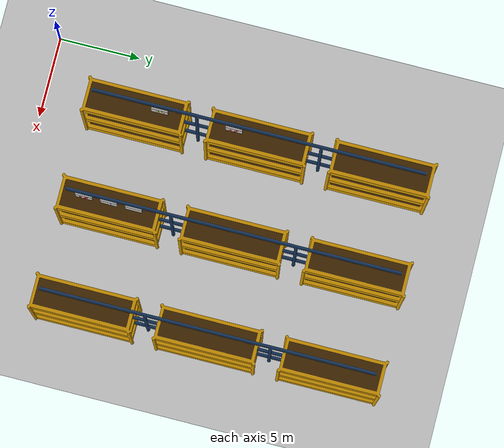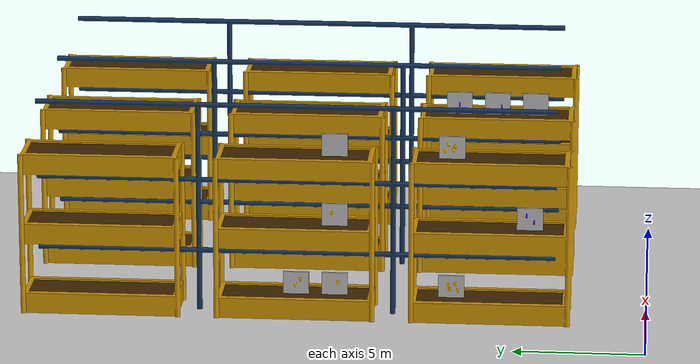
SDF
<sdf version="1.7">
 <world name="default">
  <model name="ground_plane">
   <static>1</static>
   <link name="link">
    <collision name="collision">
     <geometry><plane><normal>0 0 1</normal><size>100 100</size></plane></geometry>
     <surface>
      <contact><collide_bitmask>65535</collide_bitmask></contact>
      <friction><ode><mu>100</mu><mu2>50</mu2></ode></friction>
     </surface>
    </collision>
    <visual name="visual">
     <cast_shadows>0</cast_shadows>
     <geometry><plane><normal>0 0 1</normal><size>100 100</size></plane></geometry>
     <material>
      <script><uri>file://media/materials/scripts/gazebo.material</uri><name>Gazebo/Grey</name></script>
     </material>
    </visual>
   </link>
  </model>
  <model name="greenhouse_world">
   <link name="icuas24">
    <inertial>
     <mass>1</mass>
     <inertia><ixx>10</ixx><ixy>0</ixy><ixz>0</ixz><iyy>10</iyy><iyz>0</iyz><izz>10</izz></inertia>
    </inertial>
    <collision name="icuas24_collision">
     <geometry>
      <mesh>
       <scale>1 1 1</scale>
       <uri>/root/sim_ws/src/icuas24_competition/models/icuas24/icuas24_wrld_notxt.dae</uri>
      </mesh>
     </geometry>
    </collision>
    <sensor name="beds_collision" type="contact">
     <always_on>1</always_on>
     <visualize>0</visualize>
     <topic>__default_topic__</topic>
     <update_rate>50.0</update_rate>
     <plugin name="beds_collision_controller" filename="libgazebo_ros_bumper.so">
      <alwaysOn>1</alwaysOn>
      <updateRate>5.0</updateRate>
      <bumperTopicName>/bumper/beds</bumperTopicName>
      <frameName>world</frameName>
     </plugin>
     <contact>
      <collision>__default__</collision>
      <topic>__default_topic__</topic>
      <collision>icuas24_collision</collision>
     </contact>
    </sensor>
    <visual name="icuas24_visual">
     <geometry>
      <mesh>
       <scale>1 1 1</scale>
       <uri>/root/sim_ws/src/icuas24_competition/models/icuas24/icuas24_wrld_notxt.dae</uri>
      </mesh>
     </geometry>
    </visual>
   </link>
   <static>1</static>
   <pose>0 0 -0.01 0 -0 0</pose>
  </model>
  <model name="plant_1">
   <link name="pepper_2">
    <inertial>
     <mass>1</mass>
     <inertia><ixx>10</ixx><ixy>0</ixy><ixz>0</ixz><iyy>10</iyy><iyz>0</iyz><izz>10</izz></inertia>
    </inertial>
    <collision name="pepper_2_collision">
     <geometry>
      <mesh><scale>1 1 1</scale><uri>/root/sim_ws/src/icuas24_competition/models/pepper_2/pepper_2.dae</uri></mesh>
     </geometry>
    </collision>
    <visual name="pepper_2_visual">
     <geometry>
      <mesh><scale>1 1 1</scale><uri>/root/sim_ws/src/icuas24_competition/models/pepper_2/pepper_2.dae</uri></mesh>
     </geometry>
    </visual>
   </link>
   <static>1</static>
   <pose>4 7.5 1.1 0 -0 1.5707</pose>
  </model>
  <model name="plant_2">
   <link name="eggplant_4">
    <inertial>
     <mass>1</mass>
     <inertia><ixx>10</ixx><ixy>0</ixy><ixz>0</ixz><iyy>10</iyy><iyz>0</iyz><izz>10</izz></inertia>
    </inertial>
    <collision name="eggplant_4_collision">
     <geometry>
      <mesh>
       <scale>1 1 1</scale>
       <uri>/root/sim_ws/src/icuas24_competition/models/eggplant_4/eggplant_4.dae</uri>
      </mesh>
     </geometry>
    </collision>
    <visual name="eggplant_4_visual">
     <geometry>
      <mesh>
       <scale>1 1 1</scale>
       <uri>/root/sim_ws/src/icuas24_competition/models/eggplant_4/eggplant_4.dae</uri>
      </mesh>
     </geometry>
    </visual>
   </link>
   <static>1</static>
   <pose>4 4.5 3.9 0 0 -1.5707</pose>
  </model>
  <model name="plant_3">
   <link name="pepper_2">
    <inertial>
     <mass>1</mass>
     <inertia><ixx>10</ixx><ixy>0</ixy><ixz>0</ixz><iyy>10</iyy><iyz>0</iyz><izz>10</izz></inertia>
    </inertial>
    <collision name="pepper_2_collision">
     <geometry>
      <mesh><scale>1 1 1</scale><uri>/root/sim_ws/src/icuas24_competition/models/pepper_2/pepper_2.dae</uri></mesh>
     </geometry>
    </collision>
    <visual name="pepper_2_visual">
     <geometry>
      <mesh><scale>1 1 1</scale><uri>/root/sim_ws/src/icuas24_competition/models/pepper_2/pepper_2.dae</uri></mesh>
     </geometry>
    </visual>
   </link>
   <static>1</static>
   <pose>4 7.5 6.7 0 0 -1.5707</pose>
  </model>
  <model name="plant_4">
   <link name="pepper_1">
    <inertial>
     <mass>1</mass>
     <inertia><ixx>10</ixx><ixy>0</ixy><ixz>0</ixz><iyy>10</iyy><iyz>0</iyz><izz>10</izz></inertia>
    </inertial>
    <collision name="pepper_1_collision">
     <geometry>
      <mesh><scale>1 1 1</scale><uri>/root/sim_ws/src/icuas24_competition/models/pepper_1/pepper_1.dae</uri></mesh>
     </geometry>
    </collision>
    <visual name="pepper_1_visual">
     <geometry>
      <mesh><scale>1 1 1</scale><uri>/root/sim_ws/src/icuas24_competition/models/pepper_1/pepper_1.dae</uri></mesh>
     </geometry>
    </visual>
   </link>
   <static>1</static>
   <pose>4 12 1.1 0 0 -1.5707</pose>
  </model>
  <model name="plant_5">
   <link name="pepper_4">
    <inertial>
     <mass>1</mass>
     <inertia><ixx>10</ixx><ixy>0</ixy><ixz>0</ixz><iyy>10</iyy><iyz>0</iyz><izz>10</izz></inertia>
    </inertial>
    <collision name="pepper_4_collision">
     <geometry>
      <mesh><scale>1 1 1</scale><uri>/root/sim_ws/src/icuas24_competition/models/pepper_4/pepper_4.dae</uri></mesh>
     </geometry>
    </collision>
    <visual name="pepper_4_visual">
     <geometry>
      <mesh><scale>1 1 1</scale><uri>/root/sim_ws/src/icuas24_competition/models/pepper_4/pepper_4.dae</uri></mesh>
     </geometry>
    </visual>
   </link>
   <static>1</static>
   <pose>4 13.5 1.1 0 -0 1.5707</pose>
  </model>
  <model name="plant_7">
   <link name="pepper_1">
    <inertial>
     <mass>1</mass>
     <inertia><ixx>10</ixx><ixy>0</ixy><ixz>0</ixz><iyy>10</iyy><iyz>0</iyz><izz>10</izz></inertia>
    </inertial>
    <collision name="pepper_1_collision">
     <geometry>
      <mesh><scale>1 1 1</scale><uri>/root/sim_ws/src/icuas24_competition/models/pepper_1/pepper_1.dae</uri></mesh>
     </geometry>
    </collision>
    <visual name="pepper_1_visual">
     <geometry>
      <mesh><scale>1 1 1</scale><uri>/root/sim_ws/src/icuas24_competition/models/pepper_1/pepper_1.dae</uri></mesh>
     </geometry>
    </visual>
   </link>
   <static>1</static>
   <pose>4 12 3.9 0 -0 1.5707</pose>
  </model>
  <model name="plant_8">
   <link name="tomato_3">
    <inertial>
     <mass>1</mass>
     <inertia><ixx>10</ixx><ixy>0</ixy><ixz>0</ixz><iyy>10</iyy><iyz>0</iyz><izz>10</izz></inertia>
    </inertial>
    <collision name="tomato_3_collision">
     <geometry>
      <mesh><scale>1 1 1</scale><uri>/root/sim_ws/src/icuas24_competition/models/tomato_3/tomato_3.dae</uri></mesh>
     </geometry>
    </collision>
    <visual name="tomato_3_visual">
     <geometry>
      <mesh><scale>1 1 1</scale><uri>/root/sim_ws/src/icuas24_competition/models/tomato_3/tomato_3.dae</uri></mesh>
     </geometry>
    </visual>
   </link>
   <static>1</static>
   <pose>4 12 6.7 0 0 -1.5707</pose>
  </model>
  <model name="plant_19">
   <link name="tomato_2">
    <inertial>
     <mass>1</mass>
     <inertia><ixx>10</ixx><ixy>0</ixy><ixz>0</ixz><iyy>10</iyy><iyz>0</iyz><izz>10</izz></inertia>
    </inertial>
    <collision name="tomato_2_collision">
     <geometry>
      <mesh><scale>1 1 1</scale><uri>/root/sim_ws/src/icuas24_competition/models/tomato_2/tomato_2.dae</uri></mesh>
     </geometry>
    </collision>
    <visual name="tomato_2_visual">
     <geometry>
      <mesh><scale>1 1 1</scale><uri>/root/sim_ws/src/icuas24_competition/models/tomato_2/tomato_2.dae</uri></mesh>
     </geometry>
    </visual>
   </link>
   <static>1</static>
   <pose>10 4.5 1.1 0 -0 1.5707</pose>
  </model>
  <model name="plant_20">
   <link name="eggplant_1">
    <inertial>
     <mass>1</mass>
     <inertia><ixx>10</ixx><ixy>0</ixy><ixz>0</ixz><iyy>10</iyy><iyz>0</iyz><izz>10</izz></inertia>
    </inertial>
    <collision name="eggplant_1_collision">
     <geometry>
      <mesh>
       <scale>1 1 1</scale>
       <uri>/root/sim_ws/src/icuas24_competition/models/eggplant_1/eggplant_1.dae</uri>
      </mesh>
     </geometry>
    </collision>
    <visual name="eggplant_1_visual">
     <geometry>
      <mesh>
       <scale>1 1 1</scale>
       <uri>/root/sim_ws/src/icuas24_competition/models/eggplant_1/eggplant_1.dae</uri>
      </mesh>
     </geometry>
    </visual>
   </link>
   <static>1</static>
   <pose>10 6 1.1 0 0 -1.5707</pose>
  </model>
  <model name="plant_21">
   <link name="plant">
    <inertial>
     <mass>1</mass>
     <inertia><ixx>10</ixx><ixy>0</ixy><ixz>0</ixz><iyy>10</iyy><iyz>0</iyz><izz>10</izz></inertia>
    </inertial>
    <collision name="plant_collision">
     <geometry>
      <mesh><scale>1 1 1</scale><uri>/root/sim_ws/src/icuas24_competition/models/plant/plant_base.dae</uri></mesh>
     </geometry>
    </collision>
    <visual name="plant_visual">
     <geometry>
      <mesh><scale>1 1 1</scale><uri>/root/sim_ws/src/icuas24_competition/models/plant/plant_base.dae</uri></mesh>
     </geometry>
    </visual>
   </link>
   <static>1</static>
   <pose>10 7.5 1.1 0 -0 1.5707</pose>
  </model>
  <model name="plant_22">
   <link name="tomato_1">
    <inertial>
     <mass>1</mass>
     <inertia><ixx>10</ixx><ixy>0</ixy><ixz>0</ixz><iyy>10</iyy><iyz>0</iyz><izz>10</izz></inertia>
    </inertial>
    <collision name="tomato_1_collision">
     <geometry>
      <mesh><scale>1 1 1</scale><uri>/root/sim_ws/src/icuas24_competition/models/tomato_1/tomato_1.dae</uri></mesh>
     </geometry>
    </collision>
    <visual name="tomato_1_visual">
     <geometry>
      <mesh><scale>1 1 1</scale><uri>/root/sim_ws/src/icuas24_competition/models/tomato_1/tomato_1.dae</uri></mesh>
     </geometry>
    </visual>
   </link>
   <static>1</static>
   <pose>10 4.5 3.9 0 -0 1.5707</pose>
  </model>
  <model name="plant_23">
   <link name="eggplant_1">
    <inertial>
     <mass>1</mass>
     <inertia><ixx>10</ixx><ixy>0</ixy><ixz>0</ixz><iyy>10</iyy><iyz>0</iyz><izz>10</izz></inertia>
    </inertial>
    <collision name="eggplant_1_collision">
     <geometry>
      <mesh>
       <scale>1 1 1</scale>
       <uri>/root/sim_ws/src/icuas24_competition/models/eggplant_1/eggplant_1.dae</uri>
      </mesh>
     </geometry>
    </collision>
    <visual name="eggplant_1_visual">
     <geometry>
      <mesh>
       <scale>1 1 1</scale>
       <uri>/root/sim_ws/src/icuas24_competition/models/eggplant_1/eggplant_1.dae</uri>
      </mesh>
     </geometry>
    </visual>
   </link>
   <static>1</static>
   <pose>10 6 3.9 0 -0 1.5707</pose>
  </model>
  <model name="plant_24">
   <link name="tomato_3">
    <inertial>
     <mass>1</mass>
     <inertia><ixx>10</ixx><ixy>0</ixy><ixz>0</ixz><iyy>10</iyy><iyz>0</iyz><izz>10</izz></inertia>
    </inertial>
    <collision name="tomato_3_collision">
     <geometry>
      <mesh><scale>1 1 1</scale><uri>/root/sim_ws/src/icuas24_competition/models/tomato_3/tomato_3.dae</uri></mesh>
     </geometry>
    </collision>
    <visual name="tomato_3_visual">
     <geometry>
      <mesh><scale>1 1 1</scale><uri>/root/sim_ws/src/icuas24_competition/models/tomato_3/tomato_3.dae</uri></mesh>
     </geometry>
    </visual>
   </link>
   <static>1</static>
   <pose>10 7.5 3.9 0 -0 1.5707</pose>
  </model>
  <model name="plant_25">
   <link name="tomato_3">
    <inertial>
     <mass>1</mass>
     <inertia><ixx>10</ixx><ixy>0</ixy><ixz>0</ixz><iyy>10</iyy><iyz>0</iyz><izz>10</izz></inertia>
    </inertial>
    <collision name="tomato_3_collision">
     <geometry>
      <mesh><scale>1 1 1</scale><uri>/root/sim_ws/src/icuas24_competition/models/tomato_3/tomato_3.dae</uri></mesh>
     </geometry>
    </collision>
    <visual name="tomato_3_visual">
     <geometry>
      <mesh><scale>1 1 1</scale><uri>/root/sim_ws/src/icuas24_competition/models/tomato_3/tomato_3.dae</uri></mesh>
     </geometry>
    </visual>
   </link>
   <static>1</static>
   <pose>10 4.5 6.7 0 0 -1.5707</pose>
  </model>
  <model name="plant_26">
   <link name="eggplant_3">
    <inertial>
     <mass>1</mass>
     <inertia><ixx>10</ixx><ixy>0</ixy><ixz>0</ixz><iyy>10</iyy><iyz>0</iyz><izz>10</izz></inertia>
    </inertial>
    <collision name="eggplant_3_collision">
     <geometry>
      <mesh>
       <scale>1 1 1</scale>
       <uri>/root/sim_ws/src/icuas24_competition/models/eggplant_3/eggplant_3.dae</uri>
      </mesh>
     </geometry>
    </collision>
    <visual name="eggplant_3_visual">
     <geometry>
      <mesh>
       <scale>1 1 1</scale>
       <uri>/root/sim_ws/src/icuas24_competition/models/eggplant_3/eggplant_3.dae</uri>
      </mesh>
     </geometry>
    </visual>
   </link>
   <static>1</static>
   <pose>10 6 6.7 0 0 -1.5707</pose>
  </model>
  <model name="plant_27">
   <link name="eggplant_1">
    <inertial>
     <mass>1</mass>
     <inertia><ixx>10</ixx><ixy>0</ixy><ixz>0</ixz><iyy>10</iyy><iyz>0</iyz><izz>10</izz></inertia>
    </inertial>
    <collision name="eggplant_1_collision">
     <geometry>
      <mesh>
       <scale>1 1 1</scale>
       <uri>/root/sim_ws/src/icuas24_competition/models/eggplant_1/eggplant_1.dae</uri>
      </mesh>
     </geometry>
    </collision>
    <visual name="eggplant_1_visual">
     <geometry>
      <mesh>
       <scale>1 1 1</scale>
       <uri>/root/sim_ws/src/icuas24_competition/models/eggplant_1/eggplant_1.dae</uri>
      </mesh>
     </geometry>
    </visual>
   </link>
   <static>1</static>
   <pose>10 7.5 6.7 0 -0 1.5707</pose>
  </model>
  <model name="plant_28">
   <link name="tomato_3">
    <inertial>
     <mass>1</mass>
     <inertia><ixx>10</ixx><ixy>0</ixy><ixz>0</ixz><iyy>10</iyy><iyz>0</iyz><izz>10</izz></inertia>
    </inertial>
    <collision name="tomato_3_collision">
     <geometry>
      <mesh><scale>1 1 1</scale><uri>/root/sim_ws/src/icuas24_competition/models/tomato_3/tomato_3.dae</uri></mesh>
     </geometry>
    </collision>
    <visual name="tomato_3_visual">
     <geometry>
      <mesh><scale>1 1 1</scale><uri>/root/sim_ws/src/icuas24_competition/models/tomato_3/tomato_3.dae</uri></mesh>
     </geometry>
    </visual>
   </link>
   <static>1</static>
   <pose>10 12 1.1 0 0 -1.5707</pose>
  </model>
 </world>
</sdf>
